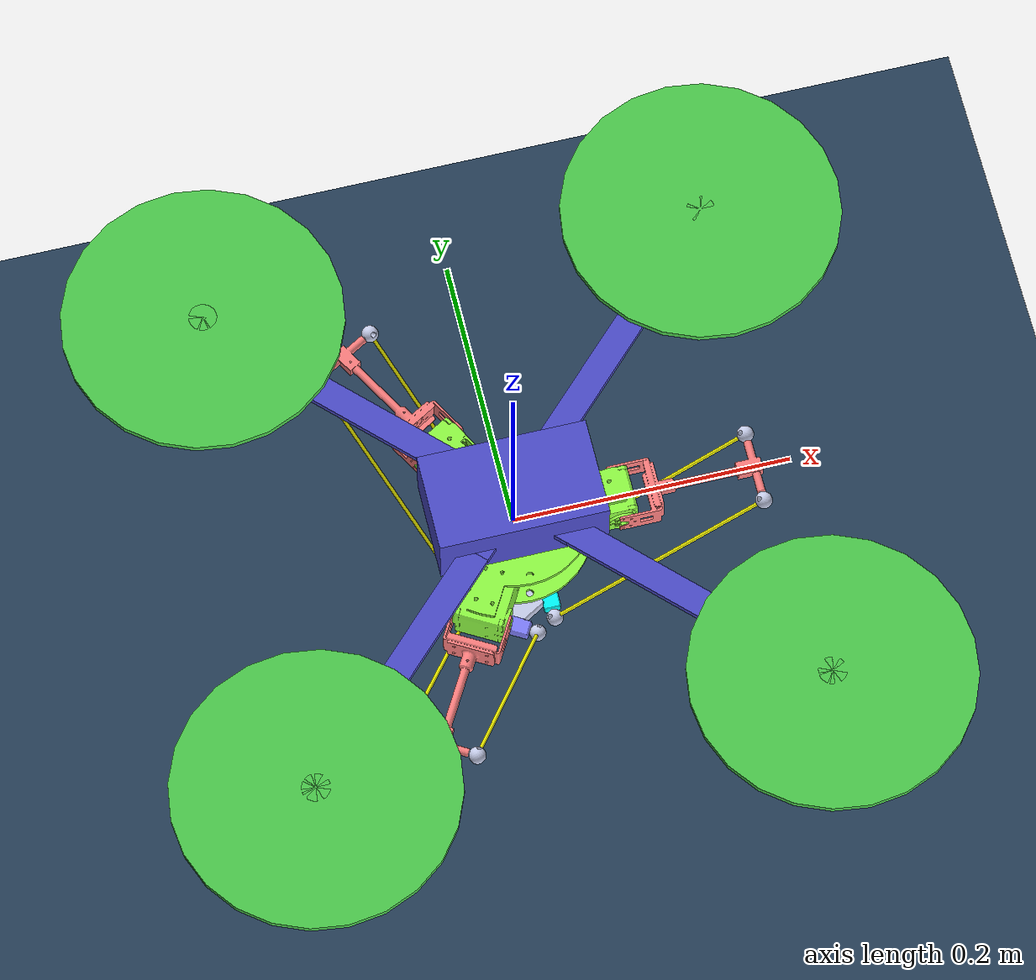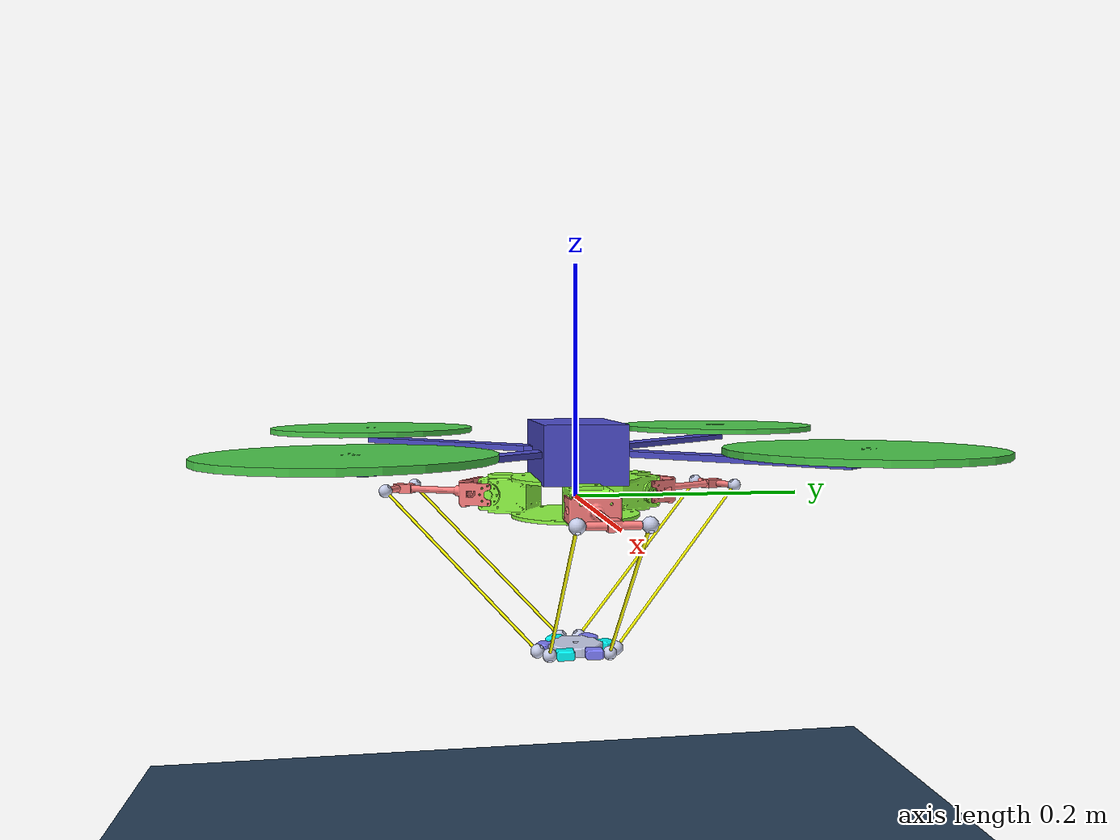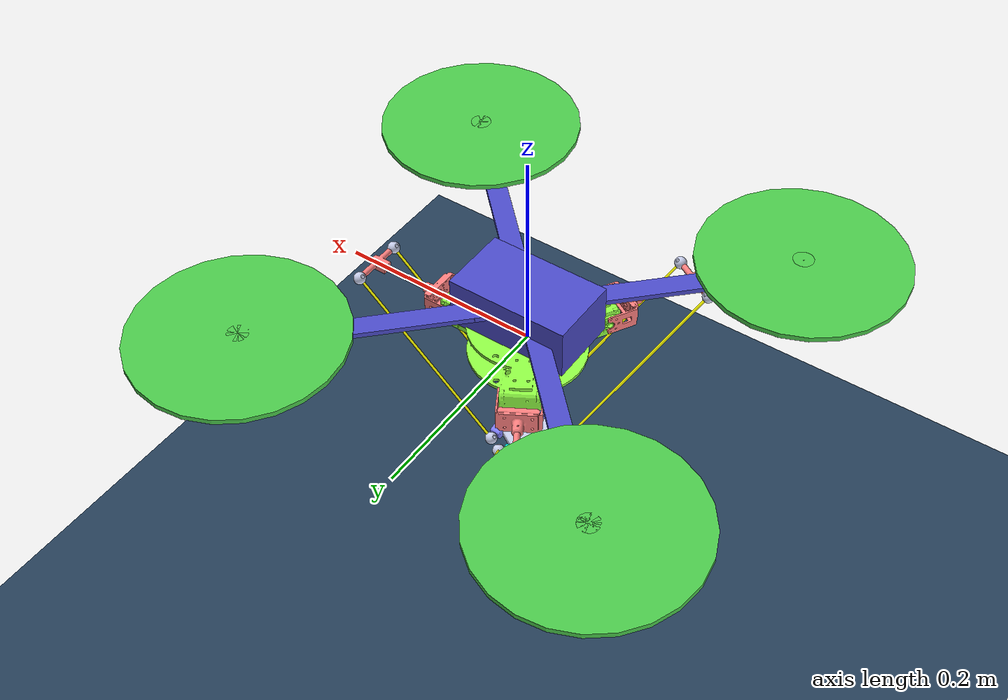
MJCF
<mujoco model="CF2 scene">
  <include file="./urdf/Delta.xml"/>

  <statistic center="0 0 1" extent="0.2" meansize=".05"/>

  <visual>
    <headlight diffuse="0.6 0.6 0.6" ambient="0.3 0.3 0.3" specular="0 0 0"/>
    <rgba haze="0.15 0.25 0.35 1"/>
    <global azimuth="-20" elevation="-20" ellipsoidinertia="true"/>
  </visual>

  <asset>
    <texture type="skybox" builtin="gradient" rgb1="0.3 0.5 0.7" rgb2="0 0 0" width="512" height="3072"/>
    <texture type="2d" name="groundplane" builtin="checker" mark="edge" rgb1="0.2 0.3 0.4" rgb2="0.1 0.2 0.3"
      markrgb="0.8 0.8 0.8" width="300" height="300"/>
    <material name="groundplane" texture="groundplane" texuniform="true" texrepeat="5 5" reflectance="0.2"/>
  </asset>

  <worldbody>
    <camera name="world_camera" pos="0.560 -0.687 0.744" xyaxes="0.872 0.489 -0.000 -0.260 0.465 0.846"/>
    <light pos="0 0 1.5" dir="0 0 -1" directional="true"/>
    <geom name="floor" pos="0 0 -1" quat="1 0 0 0" size="0 0 0.05" type="plane" material="groundplane"/>
  </worldbody>
</mujoco>

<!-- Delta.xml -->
<mujoco model="Delta">
  <compiler angle="radian" meshdir="/Users/yunxiaozang/Documents/GitHub/Delta_project/Delta/meshes"/>
  <option timestep="0.0001" gravity="0 0 0" integrator="implicit" iterations="100" density="1" viscosity="1e-5"/>

  <option>
      <flag contact="disable"/>
  </option>

  <default>
    <joint type="hinge" frictionloss="0.0001" damping='0.00005' limited="true" range="-3.14 3.14"/>
    <position ctrllimited="false" forcelimited="false"  kp="100" kv="10"/>
  </default>

  <asset>
    <mesh name="base_link" file="base_link.STL"/>
    <mesh name="motor_arm_link1" file="motor_arm_link1.STL"/>
    <mesh name="right_elbow_link1" file="right_elbow_link1.STL"/>
    <mesh name="right_arm_link1" file="right_arm_link1.STL"/>
    <mesh name="right_hinge_link1" file="right_hinge_link1.STL"/>
    <mesh name="right_end_link1" file="right_end_link1.STL"/>
    <mesh name="left_elbow_link1" file="left_elbow_link1.STL"/>
    <mesh name="left_arm_link1" file="left_arm_link1.STL"/>
    <mesh name="left_hinge_link1" file="left_hinge_link1.STL"/>
    <mesh name="left_end_link1" file="left_end_link1.STL"/>
    <mesh name="end_platform" file="end_platform.STL"/>
    <mesh name="motor_arm_link2" file="motor_arm_link2.STL"/>
    <mesh name="right_elbow_link2" file="right_elbow_link2.STL"/>
    <mesh name="right_arm_link2" file="right_arm_link2.STL"/>
    <mesh name="right_hinge_link2" file="right_hinge_link2.STL"/>
    <mesh name="right_end_link2" file="right_end_link2.STL"/>
    <mesh name="left_elbow_link2" file="left_elbow_link2.STL"/>
    <mesh name="left_arm_link2" file="left_arm_link2.STL"/>
    <mesh name="left_hinge_link2" file="left_hinge_link2.STL"/>
    <mesh name="left_end_link2" file="left_end_link2.STL"/>
    <mesh name="motor_arm_link3" file="motor_arm_link3.STL"/>
    <mesh name="right_elbow_link3" file="right_elbow_link3.STL"/>
    <mesh name="right_arm_link3" file="right_arm_link3.STL"/>
    <mesh name="right_hinge_link3" file="right_hinge_link3.STL"/>
    <mesh name="right_end_link3" file="right_end_link3.STL"/>
    <mesh name="left_elbow_link3" file="left_elbow_link3.STL"/>
    <mesh name="left_arm_link3" file="left_arm_link3.STL"/>
    <mesh name="left_hinge_link3" file="left_hinge_link3.STL"/>
    <mesh name="left_end_link3" file="left_end_link3.STL"/>
    <texture name="grid" type="2d" builtin="checker" rgb1=".1 .2 .3" rgb2=".2 .3 .4" width="300" height="300"/>
    <material name="grid" texture="grid" texrepeat="8 8" reflectance=".2"/>
  </asset>

  <worldbody>
    <geom pos="0 0 -.4" size="1.2 1.2 .01" type="plane" material="grid"/>
    <light pos="0 0 1."/>
    <body name="base_platform">
      <geom name="core" type="box" pos="0 0 0.04" quat = "1. 0. 0. 0" size="0.06 0.035 0.025"  rgba="0.3 0.3 0.8 1" mass = ".2"/>
			<geom name="a00" type="box" pos=".071 0.071 0.04" size="0.15 0.01 0.0025"  quat = ".924 0.0 0.0 0.383" rgba="0.3 0.3 0.8 1" mass = ".025"/>
			<geom name="a10" type="box" pos=".071 -0.071 0.04" size="0.15 0.01 0.0025"  quat = ".383 0.0 0.0 0.924" rgba="0.3 0.3 0.8 1" mass = ".025"/>
			<geom name="a20" type="box" pos="-0.071 -0.071 0.04" size="0.15 0.01 0.0025"  quat = "-.383 0.0 0.0 0.924" rgba="0.3 0.3 0.8 1" mass = ".025"/>
			<geom name="a30" type="box" pos="-.071 0.071 0.04" size="0.15 0.01 0.0025"  quat = ".924 0.0 0.0 -0.383" rgba="0.3 0.3 0.8 1" mass = ".025"/>

      <site name="motor0" type="cylinder" pos=" 0.18  0.18 0.05"  size="0.01 0.0025"  quat = "1.0 0.0 0.0 0." rgba="0.3 0.8 0.3 1"/>
      <site name="motor1" type="cylinder" pos=" 0.18 -0.18 0.05"  size="0.01 0.0025"  quat = "1.0 0.0 0.0 0." rgba="0.3 0.8 0.3 1"/>
      <site name="motor2" type="cylinder" pos="-0.18 -0.18 0.05"  size="0.01 0.0025"  quat = "1.0 0.0 0.0 0." rgba="0.3 0.8 0.3 1"/>
      <site name="motor3" type="cylinder" pos="-0.18  0.18 0.05"  size="0.01 0.0025"  quat = "1.0 0.0 0.0 0." rgba="0.3 0.8 0.3 1"/>

<!-- Thruster geometries for collisions since site's are excluded from collision checking -->
      <geom name="thruster0" type="cylinder" pos=" 0.18  0.18  0.05" size="0.1 0.0025"  quat = "1.0 0.0 0.0 0." rgba="0.3 0.8 0.3 1" mass = ".025"/>
      <geom name="thruster1" type="cylinder" pos=" 0.18  -0.18  0.05" size="0.1 0.0025"  quat = "1.0 0.0 0.0 0." rgba="0.3 0.8 0.3 1" mass = ".025"/>
      <geom name="thruster2" type="cylinder" pos=" -0.18  -0.18  0.05" size="0.1 0.0025"  quat = "1.0 0.0 0.0 0." rgba="0.3 0.8 0.3 1" mass = ".025"/>
      <geom name="thruster3" type="cylinder" pos=" -0.18  0.18  0.05" size="0.1 0.0025"  quat = "1.0 0.0 0.0 0." rgba="0.3 0.8 0.3 1" mass = ".025"/>

      <geom type="mesh" contype="0" conaffinity="0" group="1" density="1" rgba="0.57255 1 0.27059 1" mesh="base_link"/>
      <geom type="mesh" rgba="0.57255 1 0.27059 1" mesh="base_link"/>
      <body name="motor_arm_link1" pos="0.074577 0 0">
        <inertial pos="0.048659 4.3413e-11 -3.3963e-09" quat="0.5 0.5 -0.5 0.5" mass="0.0086736" diaginertia="1.9546e-06 1.2676e-06 1.1572e-06"/>
        <joint name="motor_arm_joint1" pos="0 0 0" axis="0 -1 0" damping='10'/>
        <geom type="mesh" contype="0" conaffinity="0" group="1" density="1" rgba="1 0.50196 0.50196 1" mesh="motor_arm_link1"/>
        <geom type="mesh" rgba="1 0.50196 0.50196 1" mesh="motor_arm_link1"/>
        <body name="right_elbow_link1" pos="0.1 0.026 0" quat="0.644891 0.290023 0.290025 0.644893">
          <inertial pos="-0.00098819 3.0494e-10 -4.6362e-09" quat="0.5 0.5 0.5 0.5" mass="0.00085837" diaginertia="2.0402e-08 1.8973e-08 1.153e-08"/>
          <joint name="right_elbow_joint1" pos="0 0 0" axis="-1 0 0"  />
          <geom type="mesh" contype="0" conaffinity="0" group="1" density="1" rgba="0.79216 0.81961 0.93333 1" mesh="right_elbow_link1"/>
          <geom type="mesh" rgba="0.79216 0.81961 0.93333 1" mesh="right_elbow_link1"/>
          <body name="right_arm_link1">
            <inertial pos="-8.6914e-09 0 -0.1" quat="0.707107 0 0 0.707107" mass="0.0075206" diaginertia="4.0858e-06 4.085e-06 2.4932e-09"/>
            <joint name="right_arm_joint1" pos="0 0 0" axis="0 -1 0"  />
            <geom type="mesh" contype="0" conaffinity="0" group="1" density="1" rgba="1 1 0 1" mesh="right_arm_link1"/>
            <geom type="mesh" rgba="1 1 0 1" mesh="right_arm_link1"/>
            <body name="right_hinge_link1" pos="0 0 -0.2">
              <inertial pos="-0.00098819 -3.0494e-10 4.6362e-09" quat="0.5 0.5 0.5 0.5" mass="0.00085837" diaginertia="2.0402e-08 1.8973e-08 1.153e-08"/>
              <joint name="right_hinge_joint1" pos="0 0 0" axis="0 1 0"  />
              <geom type="mesh" contype="0" conaffinity="0" group="1" density="1" rgba="0.79216 0.81961 0.93333 1" mesh="right_hinge_link1"/>
              <geom type="mesh" rgba="0.79216 0.81961 0.93333 1" mesh="right_hinge_link1"/>
              <body name="right_end_link1">
                <inertial pos="-0.013549 4.0775e-05 -4.5973e-05" quat="0.306307 0.63732 0.273553 0.65205" mass="0.0012596" diaginertia="3.85901e-08 2.95879e-08 2.3009e-08"/>
                <joint name="right_end_joint1" pos="0 0 0" axis="-1 0 0"  />
                <geom type="mesh" contype="0" conaffinity="0" group="1" density="100" rgba="0.50196 0.50196 1 1" mesh="right_end_link1"/>
                <geom type="mesh" rgba="0.50196 0.50196 1 1" mesh="right_end_link1"/>
              </body>
            </body>
          </body>
        </body>
        <body name="left_elbow_link1" pos="0.1 -0.026 0" quat="0.644891 0.290023 0.290025 0.644893">
          <inertial pos="0.00098819 3.0494e-10 4.6362e-09" quat="0.5 0.5 0.5 0.5" mass="0.00085837" diaginertia="2.0402e-08 1.8973e-08 1.153e-08"/>
          <joint name="left_elbow_joint1" pos="0 0 0" axis="1 0 0"/>
          <geom type="mesh" contype="0" conaffinity="0" group="1" density="1" rgba="0.79216 0.81961 0.93333 1" mesh="left_elbow_link1"/>
          <geom type="mesh" rgba="0.79216 0.81961 0.93333 1" mesh="left_elbow_link1"/>
          <body name="left_arm_link1">
            <inertial pos="-8.6914e-09 0 -0.1" quat="0.707107 0 0 0.707107" mass="0.0075206" diaginertia="4.0858e-06 4.085e-06 2.4932e-09"/>
            <joint name="left_arm_joint1" pos="0 0 0" axis="0 -1 0"/>
            <geom type="mesh" contype="0" conaffinity="0" group="1" density="1" rgba="1 1 0 1" mesh="left_arm_link1"/>
            <geom type="mesh" rgba="1 1 0 1" mesh="left_arm_link1"/>
            <body name="left_hinge_link1" pos="0 0 -0.2">
              <inertial pos="0.00098819 3.0494e-10 4.6362e-09" quat="0.5 0.5 0.5 0.5" mass="0.00085837" diaginertia="2.0402e-08 1.8973e-08 1.153e-08"/>
              <joint name="left_hinge_joint1" pos="0 0 0" axis="0 -1 0"/>
              <geom type="mesh" contype="0" conaffinity="0" group="1" density="1" rgba="0.79216 0.81961 0.93333 1" mesh="left_hinge_link1"/>
              <geom type="mesh" rgba="0.79216 0.81961 0.93333 1" mesh="left_hinge_link1"/>
              <body name="left_end_link1">
                <inertial pos="0.013549 4.0775e-05 -4.5973e-05" quat="0.273553 0.65205 0.306307 0.63732" mass="0.0012596" diaginertia="3.85901e-08 2.95879e-08 2.3009e-08"/>
                <joint name="left_end_joint1" pos="0 0 0" axis="1 0 0"/>
                <geom type="mesh" contype="0" conaffinity="0" group="1" density="100" rgba="0 1 1 1" mesh="left_end_link1"/>
                <geom type="mesh" rgba="0 1 1 1" mesh="left_end_link1"/>
              </body>
            </body>
          </body>
        </body>
      </body>
      <body name="motor_arm_link2" pos="-0.037289 0.064586 0" quat="0.499998 0 0 0.866027">
        <inertial pos="0.048659 -1.1526e-10 -3.1381e-09" quat="0.5 0.5 -0.5 0.5" mass="0.0086736" diaginertia="1.9546e-06 1.2676e-06 1.1572e-06"/>
        <joint name="motor_arm_joint2" pos="0 0 0" axis="0 -1 0" damping='10'/>
        <geom type="mesh" contype="0" conaffinity="0" group="1" density="1" rgba="1 0.50196 0.50196 1" mesh="motor_arm_link2"/>
        <geom type="mesh" rgba="1 0.50196 0.50196 1" mesh="motor_arm_link2"/>
        <body name="right_elbow_link2" pos="0.1 0.026 0" quat="0.644891 0.290023 0.290025 0.644893">
          <inertial pos="-0.00098819 1.6333e-09 -2.2058e-09" quat="0.5 0.5 0.5 0.5" mass="0.00085837" diaginertia="2.0402e-08 1.8973e-08 1.153e-08"/>
          <joint name="right_elbow_joint2" pos="0 0 0" axis="-1 0 0"/>
          <geom type="mesh" contype="0" conaffinity="0" group="1" density="1" rgba="0.79216 0.81961 0.93333 1" mesh="right_elbow_link2"/>
          <geom type="mesh" rgba="0.79216 0.81961 0.93333 1" mesh="right_elbow_link2"/>
          <body name="right_arm_link2">
            <inertial pos="-8.6914e-09 0 -0.1" quat="0.707107 0 0 0.707107" mass="0.0075206" diaginertia="4.0858e-06 4.085e-06 2.4932e-09"/>
            <joint name="right_arm_joint2" pos="0 0 0" axis="0 -1 0"/>
            <geom type="mesh" contype="0" conaffinity="0" group="1" density="1" rgba="1 1 0 1" mesh="right_arm_link2"/>
            <geom type="mesh" rgba="1 1 0 1" mesh="right_arm_link2"/>
            <body name="right_hinge_link2" pos="0 0 -0.2">
              <inertial pos="-0.00098819 9.8853e-10 7.0548e-09" quat="0.5 0.5 0.5 0.5" mass="0.00085837" diaginertia="2.0402e-08 1.8973e-08 1.153e-08"/>
              <joint name="right_hinge_joint2" pos="0 0 0" axis="0 1 0"/>
              <geom type="mesh" contype="0" conaffinity="0" group="1" density="1" rgba="0.79216 0.81961 0.93333 1" mesh="right_hinge_link2"/>
              <geom type="mesh" rgba="0.79216 0.81961 0.93333 1" mesh="right_hinge_link2"/>
              <body name="right_end_link2">
                <inertial pos="-0.013549 4.0775e-05 -4.5973e-05" quat="0.306307 0.63732 0.273553 0.65205" mass="0.0012596" diaginertia="3.85901e-08 2.95879e-08 2.3009e-08"/>
                <joint name="right_end_joint2" pos="0 0 0" axis="-1 0 0"/>
                <geom type="mesh" contype="0" conaffinity="0" group="1" density="100" rgba="0.50196 0.50196 1 1" mesh="right_end_link2"/>
                <geom type="mesh" rgba="0.50196 0.50196 1 1" mesh="right_end_link2"/>
              </body>
            </body>
          </body>
        </body>
        <body name="left_elbow_link2" pos="0.1 -0.026 0" quat="0.644891 0.290023 0.290025 0.644893">
          <inertial pos="0.00098819 -9.7302e-10 2.2002e-09" quat="0.5 0.5 0.5 0.5" mass="0.00085837" diaginertia="2.0402e-08 1.8973e-08 1.153e-08"/>
          <joint name="left_elbow_joint2" pos="0 0 0" axis="1 0 0"/>
          <geom type="mesh" contype="0" conaffinity="0" group="1" density="1" rgba="0.79216 0.81961 0.93333 1" mesh="left_elbow_link2"/>
          <geom type="mesh" rgba="0.79216 0.81961 0.93333 1" mesh="left_elbow_link2"/>
          <body name="left_arm_link2">
            <inertial pos="-8.6914e-09 0 -0.1" quat="0.707107 0 0 0.707107" mass="0.0075206" diaginertia="4.0858e-06 4.085e-06 2.4932e-09"/>
            <joint name="left_arm_joint2" pos="0 0 0" axis="0 -1 0"/>
            <geom type="mesh" contype="0" conaffinity="0" group="1" density="1" rgba="1 1 0 1" mesh="left_arm_link2"/>
            <geom type="mesh" rgba="1 1 0 1" mesh="left_arm_link2"/>
            <body name="left_hinge_link2" pos="0 0 -0.2">
              <inertial pos="0.00098819 -9.7302e-10 2.2002e-09" quat="0.5 0.5 0.5 0.5" mass="0.00085837" diaginertia="2.0402e-08 1.8973e-08 1.153e-08"/>
              <joint name="left_hinge_joint2" pos="0 0 0" axis="0 -1 0"/>
              <geom type="mesh" contype="0" conaffinity="0" group="1" density="1" rgba="0.79216 0.81961 0.93333 1" mesh="left_hinge_link2"/>
              <geom type="mesh" rgba="0.79216 0.81961 0.93333 1" mesh="left_hinge_link2"/>
              <body name="left_end_link2">
                <inertial pos="0.013549 4.0775e-05 -4.5973e-05" quat="0.273553 0.65205 0.306307 0.63732" mass="0.0012596" diaginertia="3.85901e-08 2.95879e-08 2.3009e-08"/>
                <joint name="left_end_joint2" pos="0 0 0" axis="1 0 0"/>
                <geom type="mesh" contype="0" conaffinity="0" group="1" density="100" rgba="0 1 1 1" mesh="left_end_link2"/>
                <geom type="mesh" rgba="0 1 1 1" mesh="left_end_link2"/>
              </body>
            </body>
          </body>
        </body>
      </body>
      <body name="motor_arm_link3" pos="-0.037289 -0.064586 0" quat="0.499998 0 0 -0.866027">
        <inertial pos="0.048659 1.1069e-10 -3.4522e-09" quat="0.5 0.5 -0.5 0.5" mass="0.0086736" diaginertia="1.9546e-06 1.2676e-06 1.1572e-06"/>
        <joint name="motor_arm_joint3" pos="0 0 0" axis="0 -1 0" damping='10'/>
        <geom type="mesh" contype="0" conaffinity="0" group="1" density="1" rgba="1 0.50196 0.50196 1" mesh="motor_arm_link3"/>
        <geom type="mesh" rgba="1 0.50196 0.50196 1" mesh="motor_arm_link3"/>
        <body name="right_elbow_link3" pos="0.1 0.026 0" quat="0.644891 0.290023 0.290025 0.644893">
          <inertial pos="-0.00098819 -9.8853e-10 -7.0473e-09" quat="0.5 0.5 0.5 0.5" mass="0.00085837" diaginertia="2.0402e-08 1.8973e-08 1.153e-08"/>
          <joint name="right_elbow_joint3" pos="0 0 0" axis="-1 0 0"/>
          <geom type="mesh" contype="0" conaffinity="0" group="1" density="1" rgba="0.79216 0.81961 0.93333 1" mesh="right_elbow_link3"/>
          <geom type="mesh" rgba="0.79216 0.81961 0.93333 1" mesh="right_elbow_link3"/>
          <body name="right_arm_link3">
            <inertial pos="-8.6914e-09 0 -0.1" quat="0.707107 0 0 0.707107" mass="0.0075206" diaginertia="4.0858e-06 4.085e-06 2.4932e-09"/>
            <joint name="right_arm_joint3" pos="0 0 0" axis="0 -1 0"/>
            <geom type="mesh" contype="0" conaffinity="0" group="1" density="1" rgba="1 1 0 1" mesh="right_arm_link3"/>
            <geom type="mesh" rgba="1 1 0 1" mesh="right_arm_link3"/>
            <body name="right_hinge_link3" pos="0 0 -0.2">
              <inertial pos="-0.0009882 -1.6333e-09 2.1981e-09" quat="0.5 0.5 0.5 0.5" mass="0.00085837" diaginertia="2.0402e-08 1.8973e-08 1.153e-08"/>
              <joint name="right_hinge_joint3" pos="0 0 0" axis="0 1 0"/>
              <geom type="mesh" contype="0" conaffinity="0" group="1" density="1" rgba="0.79216 0.81961 0.93333 1" mesh="right_hinge_link3"/>
              <geom type="mesh" rgba="0.79216 0.81961 0.93333 1" mesh="right_hinge_link3"/>
              <body name="right_end_link3">
                <inertial pos="-0.013549 4.0775e-05 -4.5973e-05" quat="0.306307 0.63732 0.273553 0.65205" mass="0.0012596" diaginertia="3.85901e-08 2.95879e-08 2.3009e-08"/>
                <joint name="right_end_joint3" pos="0 0 0" axis="-1 0 0"/>
                <geom type="mesh" contype="0" conaffinity="0" group="1" density="100" rgba="0.50196 0.50196 1 1" mesh="right_end_link3"/>
                <geom type="mesh" rgba="0.50196 0.50196 1 1" mesh="right_end_link3"/>
              </body>
            </body>
          </body>
        </body>
        <body name="left_elbow_link3" pos="0.1 -0.026 0" quat="0.644891 0.290023 0.290025 0.644893">
          <inertial pos="0.00098819 1.6483e-09 7.0573e-09" quat="0.5 0.5 0.5 0.5" mass="0.00085837" diaginertia="2.0402e-08 1.8973e-08 1.153e-08"/>
          <joint name="left_elbow_joint3" pos="0 0 0" axis="1 0 0"/>
          <geom type="mesh" contype="0" conaffinity="0" group="1" density="1" rgba="0.79216 0.81961 0.93333 1" mesh="left_elbow_link3"/>
          <geom type="mesh" rgba="0.79216 0.81961 0.93333 1" mesh="left_elbow_link3"/>
          <body name="left_arm_link3">
            <inertial pos="-8.6914e-09 0 -0.1" quat="0.707107 0 0 0.707107" mass="0.0075206" diaginertia="4.0858e-06 4.085e-06 2.4932e-09"/>
            <joint name="left_arm_joint3" pos="0 0 0" axis="0 -1 0"/>
            <geom type="mesh" contype="0" conaffinity="0" group="1" density="1" rgba="1 1 0 1" mesh="left_arm_link3"/>
            <geom type="mesh" rgba="1 1 0 1" mesh="left_arm_link3"/>
            <body name="left_hinge_link3" pos="0 0 -0.2">
              <inertial pos="0.00098819 1.6483e-09 7.0573e-09" quat="0.5 0.5 0.5 0.5" mass="0.00085837" diaginertia="2.0402e-08 1.8973e-08 1.153e-08"/>
              <joint name="left_hinge_joint3" pos="0 0 0" axis="0 -1 0"/>
              <geom type="mesh" contype="0" conaffinity="0" group="1" density="1" rgba="0.79216 0.81961 0.93333 1" mesh="left_hinge_link3"/>
              <geom type="mesh" rgba="0.79216 0.81961 0.93333 1" mesh="left_hinge_link3"/>
              <body name="left_end_link3">
                <inertial pos="0.013549 4.0775e-05 -4.5973e-05" quat="0.273553 0.65205 0.306307 0.63732" mass="0.0012596" diaginertia="3.85901e-08 2.95879e-08 2.3009e-08"/>
                <joint name="left_end_joint3" pos="0 0 0" axis="1 0 0"/>
                <geom type="mesh" contype="0" conaffinity="0" group="1" density="100" rgba="0 1 1 1" mesh="left_end_link3"/>
                <geom type="mesh" rgba="0 1 1 1" mesh="left_end_link3"/>
              </body>
            </body>
          </body>
        </body>
      </body>
    </body>

    <body name="end_platform" pos="0 0 -0.13271" >
      <freejoint />
      <inertial pos="0 0 0" quat="1 0 0 0" mass="0.0125206" diaginertia="4.0858e-06 4.085e-06 2.4932e-09"/>
      <geom pos="0 0 0" quat="1 0 0 0" type="mesh" rgba="0.79216 0.81961 0.93333 1" mesh="end_platform"/>
    </body>

  </worldbody>

  <contact>
      <exclude name="e0" body1="right_end_link1" body2="end_platform" />
      <exclude name="e1" body1="left_end_link1" body2="end_platform" />
      <exclude name="e2" body1="right_end_link2" body2="end_platform" />
      <exclude name="e3" body1="left_end_link2" body2="end_platform" />
      <exclude name="e4" body1="right_end_link3" body2="end_platform" />
      <exclude name="e5" body1="left_end_link3" body2="end_platform" />
  </contact>

  <equality>
    <weld name="c1" body1="right_end_link1" body2="end_platform" solref="0.0001 0.99" solimp="0.99 0.999 0.0001" torquescale="1" />
    <weld name="c2" body1="left_end_link1" body2="end_platform" solref="0.0001 0.99" solimp="0.99 0.999 0.0001" torquescale="1" />
    <weld name="c3" body1="right_end_link2" body2="end_platform" solref="0.0001 0.99" solimp="0.99 0.999 0.0001" torquescale="1" />
    <weld name="c4" body1="left_end_link2" body2="end_platform" solref="0.0001 0.99" solimp="0.99 0.999 0.0001" torquescale="1" />
    <weld name="c5" body1="right_end_link3" body2="end_platform" solref="0.0001 0.99" solimp="0.99 0.999 0.0001" torquescale="1" />
    <weld name="c6" body1="left_end_link3" body2="end_platform" solref="0.0001 0.99" solimp="0.99 0.999 0.0001" torquescale="1" />

  </equality>

  <actuator>
    <!-- ctrllimited="true" ctrlrange="-1.8 1" -->
    <velocity name="motor1_vel" joint="motor_arm_joint1" kv="35"/>
    <velocity name="motor2_vel" joint="motor_arm_joint2" kv="35"/>
    <velocity name="motor3_vel" joint="motor_arm_joint3" kv="35"/>

    <motor ctrllimited="true" ctrlrange="0.0 1.0" gear="0  0. 2. 0. 0. -0.1" site="motor0"/>
    <motor ctrllimited="true" ctrlrange="0.0 1.0" gear="0  0. 2. 0. 0.  0.1" site="motor1"/>
    <motor ctrllimited="true" ctrlrange="0.0 1.0" gear="0  0. 2. 0. 0. -0.1" site="motor2"/>
    <motor ctrllimited="true" ctrlrange="0.0 1.0" gear="0  0. 2. 0. 0.  0.1" site="motor3"/>
  </actuator>

  <sensor>
    <!-- 末端平台位置传感器 -->
    <framepos name="ee_pos" objtype="body" objname="end_platform"/>
    <framequat name="ee_quat" objtype="body" objname="end_platform"/>
    <framelinvel name="ee_lin_vel" objtype="body" objname="end_platform"/>
    <frameangvel name="ee_ang_vel" objtype="body" objname="end_platform"/>
  </sensor>
</mujoco>
